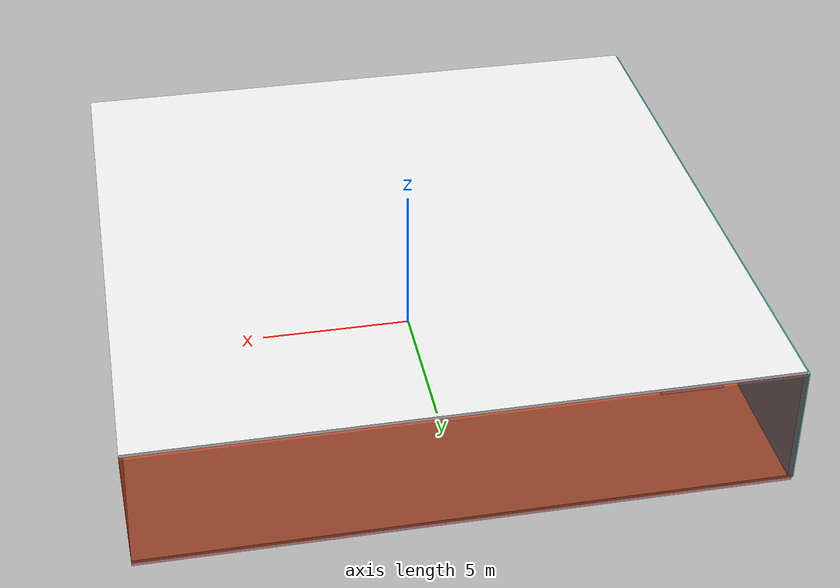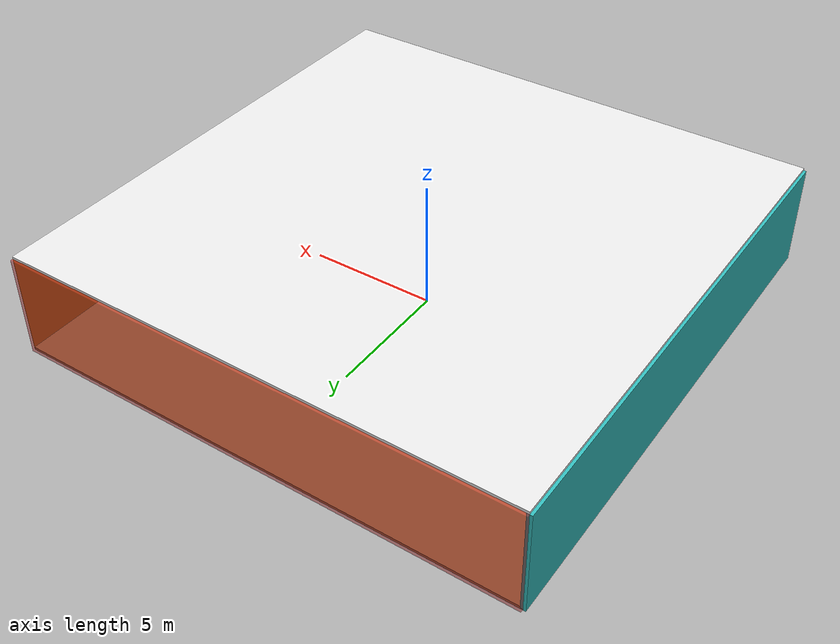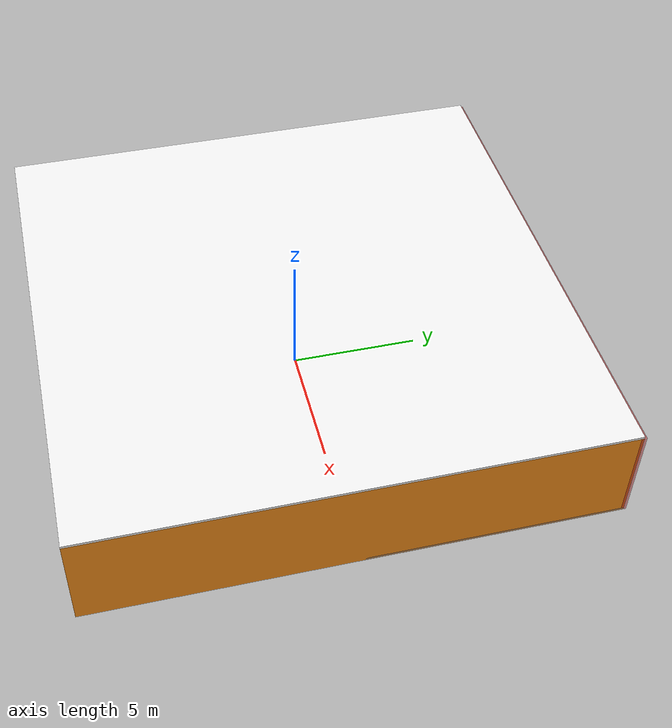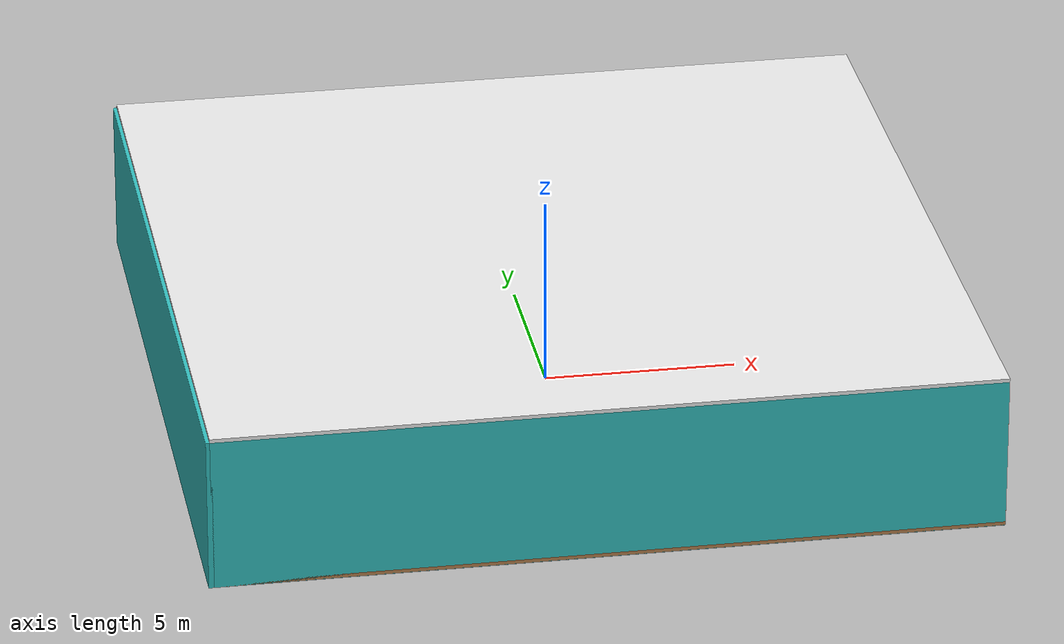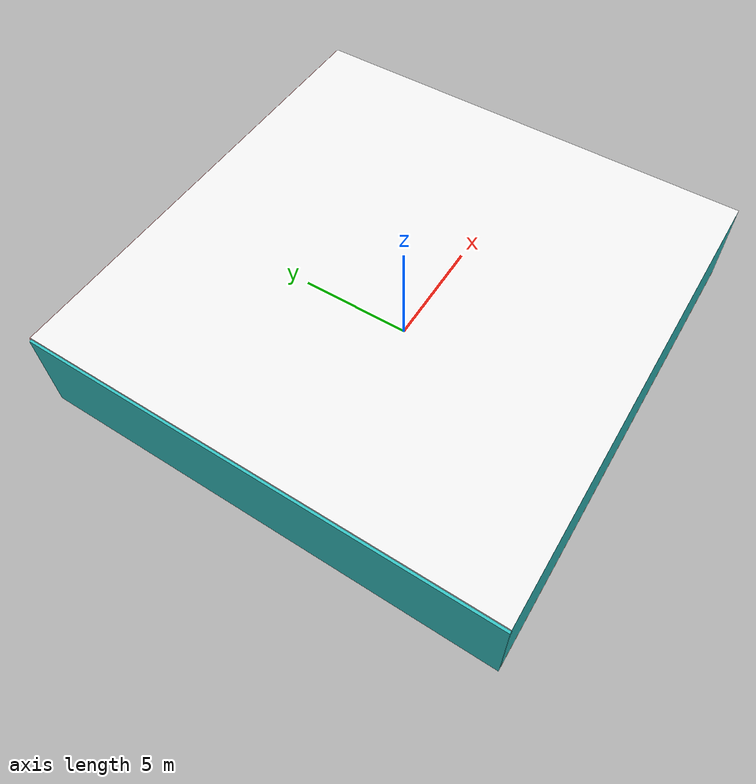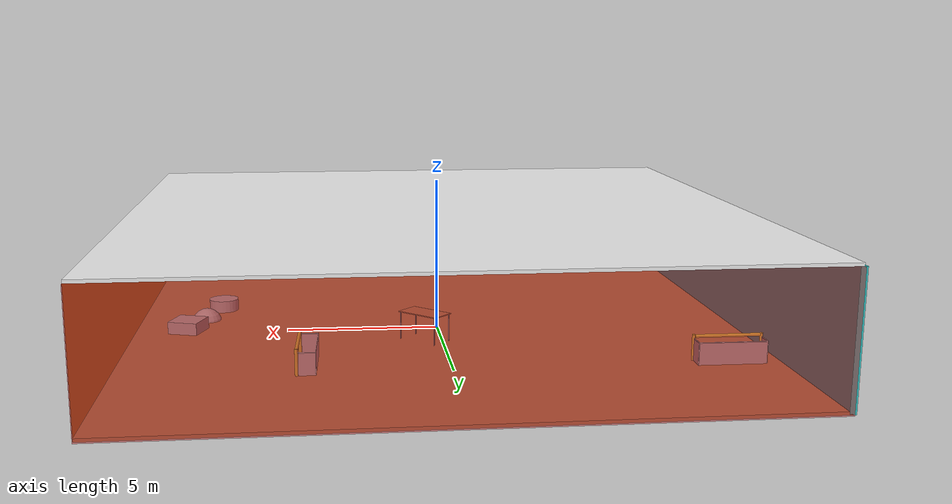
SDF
<sdf version="1.4">
 <world name="default">
  <physics type="ode">
   <max_step_size>0.001</max_step_size>
   <real_time_factor>1</real_time_factor>
   <real_time_update_rate>1000</real_time_update_rate>
   <gravity>0 0 -9.8</gravity>
  </physics>
  <scene><ambient>0.4 0.4 0.4 1</ambient><background>0.7 0.7 0.7 1</background><shadows>1</shadows></scene>
  <model name="Surrounding">
   <static>1</static>
   <link name="Ceiling">
    <collision name="Ceiling_Collision"><geometry><box><size>20 20 0.1</size></box></geometry></collision>
    <visual name="Ceiling_Visual">
     <geometry><box><size>20 20 0.1</size></box></geometry>
     <material>
      <script><uri>file://media/materials/scripts/gazebo.material</uri><name>Gazebo/WhiteGlow</name></script>
     </material>
    </visual>
    <pose>0 0 4.05 0 0 0</pose>
   </link>
   <link name="Wall_South">
    <collision name="Wall_South_Collision">
     <geometry><box><size>20 0 4</size></box></geometry>
     <pose>0 0 2 0 -0 0</pose>
    </collision>
    <visual name="Wall_South_Visual">
     <pose>0 0 2 0 -0 0</pose>
     <geometry><box><size>20 0 4</size></box></geometry>
     <material>
      <script>
       <uri>file://media/materials/scripts/gazebo.material</uri>
       <name>Gazebo/TurquoiseGlowOutline</name>
      </script>
     </material>
    </visual>
    <velocity_decay><linear>0</linear><angular>0</angular></velocity_decay>
    <pose>0 -10 0 0 -0 0</pose>
   </link>
   <link name="Wall_East">
    <collision name="Wall_21_Collision">
     <geometry><box><size>20 0 4</size></box></geometry>
     <pose>0 0 2 0 -0 0</pose>
    </collision>
    <visual name="Wall_21_Visual">
     <pose>0 0 2 0 -0 0</pose>
     <geometry><box><size>20 0 4</size></box></geometry>
     <material>
      <script><uri>file://media/materials/scripts/gazebo.material</uri><name>Gazebo/Orange</name></script>
     </material>
    </visual>
    <velocity_decay><linear>0</linear><angular>0</angular></velocity_decay>
    <pose>10 0 0 0 -0 1.5708</pose>
   </link>
   <link name="Wall_North">
    <collision name="Wall_22_Collision">
     <geometry><box><size>20 0.2 4</size></box></geometry>
     <pose>0 0 2 0 -0 0</pose>
    </collision>
    <visual name="Wall_22_Visual">
     <pose>0 0 2 0 -0 0</pose>
     <geometry><box><size>20 0.2 4</size></box></geometry>
     <material>
      <script><uri>file://media/materials/scripts/gazebo.material</uri><name>Gazebo/RedTransparent</name></script>
     </material>
    </visual>
    <velocity_decay><linear>0</linear><angular>0</angular></velocity_decay>
    <pose>0 10 0 0 -0 0</pose>
   </link>
   <link name="Wall_West">
    <collision name="Wall_23_Collision">
     <geometry><box><size>20 0.2 4</size></box></geometry>
     <pose>0 0 2 0 -0 0</pose>
    </collision>
    <visual name="Wall_23_Visual">
     <pose>0 0 2 0 -0 0</pose>
     <geometry><box><size>20 0.2 4</size></box></geometry>
     <material>
      <script><uri>file://media/materials/scripts/gazebo.material</uri><name>Gazebo/TurquoiseGlow</name></script>
     </material>
    </visual>
    <velocity_decay><linear>0</linear><angular>0</angular></velocity_decay>
    <pose>-10 0 0 0 0 -1.5708</pose>
   </link>
   <link name="Ground_link">
    <collision name="collision">
     <pose>0 0 .05 0 -0 0</pose>
     <geometry><box><size>20 20 0.1</size></box></geometry>
    </collision>
    <visual name="visual">
     <pose>0 0 .05 0 -0 0</pose>
     <geometry><box><size>20 20 0.1</size></box></geometry>
     <material>
      <script><uri>file://media/materials/scripts/gazebo.material</uri><name>Gazebo/WoodPallet</name></script>
     </material>
    </visual>
   </link>
   <static>1</static>
  </model>
  <spherical_coordinates>
   <surface_model>EARTH_WGS84</surface_model>
   <latitude_deg>0</latitude_deg>
   <longitude_deg>0</longitude_deg>
   <elevation>0</elevation>
   <heading_deg>0</heading_deg>
  </spherical_coordinates>
  <light name="lightball_0" type="diffuse">
   <diffuse>0.8 0.8 0.8 1</diffuse>
   <specular>0.2 0.2 0.2 1</specular>
   <attenuation>
    <range>100</range>
    <constant>0.7</constant>
    <linear>0.01</linear>
    <quadratic>0.001</quadratic>
   </attenuation>
   <direction>-0.5 0.1 -0.9</direction>
   <pose>3.97527349369 -6.44028533866 1.15742716032 0 0 0</pose>
  </light>
  <light name="lightball_1" type="diffuse">
   <diffuse>0.8 0.8 0.8 1</diffuse>
   <specular>0.2 0.2 0.2 1</specular>
   <attenuation>
    <range>100</range>
    <constant>0.7</constant>
    <linear>0.01</linear>
    <quadratic>0.001</quadratic>
   </attenuation>
   <direction>-0.5 0.1 -0.9</direction>
   <pose>3.5546072024 -2.9030830401 2.1537009028 0 0 0</pose>
  </light>
  <light name="lightball_2" type="diffuse">
   <diffuse>0.8 0.8 0.8 1</diffuse>
   <specular>0.2 0.2 0.2 1</specular>
   <attenuation>
    <range>100</range>
    <constant>0.7</constant>
    <linear>0.01</linear>
    <quadratic>0.001</quadratic>
   </attenuation>
   <direction>-0.5 0.1 -0.9</direction>
   <pose>-7.2651748634 -3.52611308931 1.9361085779 0 0 0</pose>
  </light>
  <light name="lightball_3" type="diffuse">
   <diffuse>0.8 0.8 0.8 1</diffuse>
   <specular>0.2 0.2 0.2 1</specular>
   <attenuation>
    <range>100</range>
    <constant>0.7</constant>
    <linear>0.01</linear>
    <quadratic>0.001</quadratic>
   </attenuation>
   <direction>-0.5 0.1 -0.9</direction>
   <pose>5.6778023885 -2.87775679113 2.75982009202 0 0 0</pose>
  </light>
  <light name="lightball_4" type="diffuse">
   <diffuse>0.8 0.8 0.8 1</diffuse>
   <specular>0.2 0.2 0.2 1</specular>
   <attenuation>
    <range>100</range>
    <constant>0.7</constant>
    <linear>0.01</linear>
    <quadratic>0.001</quadratic>
   </attenuation>
   <direction>-0.5 0.1 -0.9</direction>
   <pose>0.270938171895 -8.2568081289 2.55935936066 0 0 0</pose>
  </light>
  <light name="lightball_5" type="diffuse">
   <diffuse>0.8 0.8 0.8 1</diffuse>
   <specular>0.2 0.2 0.2 1</specular>
   <attenuation>
    <range>100</range>
    <constant>0.7</constant>
    <linear>0.01</linear>
    <quadratic>0.001</quadratic>
   </attenuation>
   <direction>-0.5 0.1 -0.9</direction>
   <pose>0.249193393969 -5.31004402582 2.65887166321 0 0 0</pose>
  </light>
  <light name="lightball_6" type="diffuse">
   <diffuse>0.8 0.8 0.8 1</diffuse>
   <specular>0.2 0.2 0.2 1</specular>
   <attenuation>
    <range>100</range>
    <constant>0.7</constant>
    <linear>0.01</linear>
    <quadratic>0.001</quadratic>
   </attenuation>
   <direction>-0.5 0.1 -0.9</direction>
   <pose>1.50972805923 -0.134290980298 3.04283494479 0 0 0</pose>
  </light>
  <light name="lightball_7" type="diffuse">
   <diffuse>0.8 0.8 0.8 1</diffuse>
   <specular>0.2 0.2 0.2 1</specular>
   <attenuation>
    <range>100</range>
    <constant>0.7</constant>
    <linear>0.01</linear>
    <quadratic>0.001</quadratic>
   </attenuation>
   <direction>-0.5 0.1 -0.9</direction>
   <pose>3.41037450436 1.28085224936 0.980139281534 0 0 0</pose>
  </light>
  <light name="lightball_8" type="diffuse">
   <diffuse>0.8 0.8 0.8 1</diffuse>
   <specular>0.2 0.2 0.2 1</specular>
   <attenuation>
    <range>100</range>
    <constant>0.7</constant>
    <linear>0.01</linear>
    <quadratic>0.001</quadratic>
   </attenuation>
   <direction>-0.5 0.1 -0.9</direction>
   <pose>-9.21717410578 1.91304221066 3.16963448851 0 0 0</pose>
  </light>
  <light name="lightball_9" type="diffuse">
   <diffuse>0.8 0.8 0.8 1</diffuse>
   <specular>0.2 0.2 0.2 1</specular>
   <attenuation>
    <range>100</range>
    <constant>0.7</constant>
    <linear>0.01</linear>
    <quadratic>0.001</quadratic>
   </attenuation>
   <direction>-0.5 0.1 -0.9</direction>
   <pose>-1.92861218668 6.75663443481 1.11510085923 0 0 0</pose>
  </light>
  <light name="lightball_10" type="diffuse">
   <diffuse>0.8 0.8 0.8 1</diffuse>
   <specular>0.2 0.2 0.2 1</specular>
   <attenuation>
    <range>100</range>
    <constant>0.7</constant>
    <linear>0.01</linear>
    <quadratic>0.001</quadratic>
   </attenuation>
   <direction>-0.5 0.1 -0.9</direction>
   <pose>-1.08405468347 5.72267568884 3.55927019484 0 0 0</pose>
  </light>
  <include>
   <uri>model://robocup_3Dsim_goal</uri>
   <pose>-8.33923609695 4.99308410026 0 0 0 1.5622249961</pose>
  </include>
  <include><uri>model://table</uri><pose>0.588251011462 1.87029430695 0 0 0 2.38425292917</pose></include>
  <include>
   <uri>model://robocup_3Dsim_goal</uri>
   <pose>4.58884043727 4.33825651593 0 0 0 3.10677653352</pose>
  </include>
  <include>
   <uri>model://textured_shapes</uri>
   <pose>7.81597222262 -1.3812966568 0 0 0 2.82237070567</pose>
  </include>
 </world>
</sdf>

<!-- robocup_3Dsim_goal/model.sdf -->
<sdf version="1.5">
  <model name="robocup_3d_goal">
    <static>true</static>
    <link name="left_post">
      <pose>0 1.05 0.45 0 0 0</pose>
      <collision name="collision">
        <geometry>
          <cylinder>
            <radius>0.05</radius>
            <length>0.9</length>
          </cylinder>
        </geometry>
      </collision>
      <visual name="visual">
        <geometry>
          <cylinder>
            <radius>0.05</radius>
            <length>0.9</length>
          </cylinder>
        </geometry>
        <material>
          <script>
            <uri>file://media/materials/scripts/gazebo.material</uri>
            <name>Gazebo/ZincYellow</name>
          </script>
        </material>
      </visual>
    </link>
    <link name="left_support_horiz_lower">
      <pose>0.30 1.05 0.01 0 0 0</pose>
      <collision name="collision">
        <geometry>
          <box>
            <size>0.50 0.02 0.02</size>
          </box>
        </geometry>
      </collision>
      <visual name="visual">
        <geometry>
          <box>
            <size>0.50 0.02 0.02</size>
          </box>
        </geometry>
        <material>
          <script>
            <uri>file://media/materials/scripts/gazebo.material</uri>
            <name>Gazebo/White</name>
          </script>
        </material>
      </visual>
    </link>
    <link name="left_support_horiz_upper">
      <pose>0.30 1.05 0.79 0 0 0</pose>
      <collision name="collision">
        <geometry>
          <box>
            <size>0.50 0.02 0.02</size>
          </box>
        </geometry>
      </collision>
      <visual name="visual">
        <geometry>
          <box>
            <size>0.50 0.02 0.02</size>
          </box>
        </geometry>
        <material>
          <script>
            <uri>file://media/materials/scripts/gazebo.material</uri>
            <name>Gazebo/White</name>
          </script>
        </material>
      </visual>
    </link>
    <link name="left_support_vertical">
      <pose>0.56 1.05 0.4 0 1.5708 0</pose>
      <collision name="collision">
        <geometry>
          <box>
            <size>0.80 0.02 0.02</size>
          </box>
        </geometry>
      </collision>
      <visual name="visual">
        <geometry>
          <box>
            <size>0.80 0.02 0.02</size>
          </box>
        </geometry>
        <material>
          <script>
            <uri>file://media/materials/scripts/gazebo.material</uri>
            <name>Gazebo/White</name>
          </script>
        </material>
      </visual>
    </link>
    <link name="right_support_horiz_lower">
      <pose>0.30 -1.05 0.01 0 0 0</pose>
      <collision name="collision">
        <geometry>
          <box>
            <size>0.50 0.02 0.02</size>
          </box>
        </geometry>
      </collision>
      <visual name="visual">
        <geometry>
          <box>
            <size>0.50 0.02 0.02</size>
          </box>
        </geometry>
        <material>
          <script>
            <uri>file://media/materials/scripts/gazebo.material</uri>
            <name>Gazebo/White</name>
          </script>
        </material>
      </visual>
    </link>
    <link name="right_support_horiz_upper">
      <pose>0.30 -1.05 0.79 0 0 0</pose>
      <collision name="collision">
        <geometry>
          <box>
            <size>0.50 0.02 0.02</size>
          </box>
        </geometry>
      </collision>
      <visual name="visual">
        <geometry>
          <box>
            <size>0.50 0.02 0.02</size>
          </box>
        </geometry>
        <material>
          <script>
            <uri>file://media/materials/scripts/gazebo.material</uri>
            <name>Gazebo/White</name>
          </script>
        </material>
      </visual>
    </link>
    <link name="right_support_vertical">
      <pose>0.56 -1.05 0.4 0 1.5708 0</pose>
      <collision name="collision">
        <geometry>
          <box>
            <size>0.80 0.02 0.02</size>
          </box>
        </geometry>
      </collision>
      <visual name="visual">
        <geometry>
          <box>
            <size>0.80 0.02 0.02</size>
          </box>
        </geometry>
        <material>
          <script>
            <uri>file://media/materials/scripts/gazebo.material</uri>
            <name>Gazebo/White</name>
          </script>
        </material>
      </visual>
    </link>
    <link name="center_support_horiz_lower">
      <pose>0.56 0 0.01 0 1.5708 0</pose>
      <collision name="collision">
        <geometry>
          <box>
            <size>0.02 2.08 0.02</size>
          </box>
        </geometry>
      </collision>
      <visual name="visual">
        <geometry>
          <box>
            <size>0.02 2.08 0.02</size>
          </box>
        </geometry>
        <material>
          <script>
            <uri>file://media/materials/scripts/gazebo.material</uri>
            <name>Gazebo/White</name>
          </script>
        </material>
      </visual>
    </link>
    <link name="center_support_horiz_upper">
      <pose>0.56 0 0.79 0 1.5708 0</pose>
      <collision name="collision">
        <geometry>
          <box>
            <size>0.02 2.08 0.02</size>
          </box>
        </geometry>
      </collision>
      <visual name="visual">
        <geometry>
          <box>
            <size>0.02 2.08 0.02</size>
          </box>
        </geometry>
        <material>
          <script>
            <uri>file://media/materials/scripts/gazebo.material</uri>
            <name>Gazebo/White</name>
          </script>
        </material>
      </visual>
    </link>
    <link name="right_post">
      <pose>0 -1.05 0.45 0 0 0</pose>
      <collision name="collision">
        <geometry>
          <cylinder>
            <radius>0.05</radius>
            <length>0.9</length>
          </cylinder>
        </geometry>
      </collision>
      <visual name="visual">
        <geometry>
          <cylinder>
            <radius>0.05</radius>
            <length>0.9</length>
          </cylinder>
        </geometry>
        <material>
          <script>
            <uri>file://media/materials/scripts/gazebo.material</uri>
            <name>Gazebo/ZincYellow</name>
          </script>
        </material>
      </visual>
    </link>
    <link name="crossbar">
      <pose>0 0 0.85 1.57 1.57 0</pose>
      <collision name="collision">
        <geometry>
          <cylinder>
            <radius>0.05</radius>
            <length>2.0</length>
          </cylinder>
        </geometry>
      </collision>
      <visual name="visual">
        <geometry>
          <cylinder>
            <radius>0.05</radius>
            <length>2.0</length>
          </cylinder>
        </geometry>
        <material>
          <script>
            <uri>file://media/materials/scripts/gazebo.material</uri>
            <name>Gazebo/ZincYellow</name>
          </script>
        </material>
      </visual>
    </link>
    <link name="center_net">
      <pose>0.56 0 0.40 0 0 0</pose>
      <collision name="collision">
        <geometry>
          <box>
            <size>0.01 2.1 0.80</size>
          </box>
        </geometry>
      </collision>
      <visual name="visual">
        <geometry>
          <box>
            <size>0.01 2.1 0.80</size>
          </box>
        </geometry>
        <material>
          <script>
            <uri>model://../model_source/models/robocup09_spl_field/materials/scripts/</uri>
            <uri>model://../model_source/models/robocup09_spl_field/materials/textures/</uri>
            <name>RoboCup/Net</name>
          </script>
        </material>
      </visual>
    </link>
    <link name="left_net">
      <pose>0.30 1.05 0.40 0 0 0</pose>
      <collision name="collision">
        <geometry>
          <box>
            <size>0.50 0.01 0.76</size>
          </box>
        </geometry>
      </collision>
      <visual name="visual">
        <geometry>
          <box>
            <size>0.50 0.01 0.76</size>
          </box>
        </geometry>
        <material>
          <script>
            <uri>model://../model_source/models/robocup09_spl_field/materials/scripts/</uri>
            <uri>model://../model_source/models/robocup09_spl_field/materials/textures/</uri>
            <name>RoboCup/Net</name>
          </script>
        </material>
      </visual>
    </link>
    <link name="right_net">
      <pose>0.30 -1.05 0.40 0 0 0</pose>
      <collision name="collision">
        <geometry>
          <box>
            <size>0.50 0.01 0.76</size>
          </box>
        </geometry>
      </collision>
      <visual name="visual">
        <geometry>
          <box>
            <size>0.50 0.01 0.76</size>
          </box>
        </geometry>
        <material>
          <script>
            <uri>model://../model_source/models/robocup09_spl_field/materials/scripts/</uri>
            <uri>model://../model_source/models/robocup09_spl_field/materials/textures/</uri>
            <name>RoboCup/Net</name>
          </script>
        </material>
      </visual>
    </link>
  </model>
</sdf>

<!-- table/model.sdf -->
<sdf version="1.5">
  <model name="table">
    <static>true</static>
    <link name="link">
      <collision name="surface">
        <pose>0 0 1.0 0 0 0</pose>
        <geometry>
          <box>
            <size>1.5 0.8 0.03</size>
          </box>
        </geometry>
        <surface>
          <friction>
            <ode>
              <mu>0.6</mu>
              <mu2>0.6</mu2>
            </ode>
          </friction>
        </surface>
      </collision>
      <visual name="visual1">
        <pose>0 0 1.0 0 0 0</pose>
        <geometry>
          <box>
            <size>1.5 0.8 0.03</size>
          </box>
        </geometry>
        <material>
          <script>
            <uri>model://media/materials/scripts/gazebo.material</uri>
            <name>Gazebo/Wood</name>
          </script>
        </material>
      </visual>
      <collision name="front_left_leg">
        <pose>0.68 0.38 0.5 0 0 0</pose>
        <geometry>
          <cylinder>
            <radius>0.02</radius>
            <length>1.0</length>
          </cylinder>
        </geometry>
      </collision>
      <visual name="front_left_leg">
        <pose>0.68 0.38 0.5 0 0 0</pose>
        <geometry>
          <cylinder>
            <radius>0.02</radius>
            <length>1.0</length>
          </cylinder>
        </geometry>
        <material>
          <script>
            <uri>model://media/materials/scripts/gazebo.material</uri>
            <name>Gazebo/Grey</name>
          </script>
        </material>
      </visual>
      <collision name="front_right_leg">
        <pose>0.68 -0.38 0.5 0 0 0</pose>
        <geometry>
          <cylinder>
            <radius>0.02</radius>
            <length>1.0</length>
          </cylinder>
        </geometry>
      </collision>
      <visual name="front_right_leg">
        <pose>0.68 -0.38 0.5 0 0 0</pose>
        <geometry>
          <cylinder>
            <radius>0.02</radius>
            <length>1.0</length>
          </cylinder>
        </geometry>
        <material>
          <script>
            <uri>model://media/materials/scripts/gazebo.material</uri>
            <name>Gazebo/Grey</name>
          </script>
        </material>
      </visual>
      <collision name="back_right_leg">
        <pose>-0.68 -0.38 0.5 0 0 0</pose>
        <geometry>
          <cylinder>
            <radius>0.02</radius>
            <length>1.0</length>
          </cylinder>
        </geometry>
      </collision>
      <visual name="back_right_leg">
        <pose>-0.68 -0.38 0.5 0 0 0</pose>
        <geometry>
          <cylinder>
            <radius>0.02</radius>
            <length>1.0</length>
          </cylinder>
        </geometry>
        <material>
          <script>
            <uri>model://media/materials/scripts/gazebo.material</uri>
            <name>Gazebo/Grey</name>
          </script>
        </material>
      </visual>
      <collision name="back_left_leg">
        <pose>-0.68 0.38 0.5 0 0 0</pose>
        <geometry>
          <cylinder>
            <radius>0.02</radius>
            <length>1.0</length>
          </cylinder>
        </geometry>
      </collision>
      <visual name="back_left_leg">
        <pose>-0.68 0.38 0.5 0 0 0</pose>
        <geometry>
          <cylinder>
            <radius>0.02</radius>
            <length>1.0</length>
          </cylinder>
        </geometry>
        <material>
          <script>
            <uri>model://media/materials/scripts/gazebo.material</uri>
            <name>Gazebo/Grey</name>
          </script>
        </material>
      </visual>
    </link>
  </model>
</sdf>

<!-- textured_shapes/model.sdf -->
<sdf version="1.6">
  <model name="textured_shapes">
    <pose>0 0 0.5 0 0 0</pose>
    <link name="box">
      <pose>0 -1.5 0 0 0 0</pose>
      <collision name="collision">
        <geometry>
          <box>
            <size>1 1 1</size>
          </box>
        </geometry>
      </collision>
      <visual name="visual">
        <geometry>
          <box>
            <size>1 1 1</size>
          </box>
        </geometry>
        <material>
          <script>
            <uri>model://../model_source/models/textured_shapes/materials/scripts</uri>
            <uri>model://../model_source/models/textured_shapes/materials/textures</uri>
            <name>TexturedShape/Squares</name>
          </script>
        </material>
      </visual>
    </link>
    <link name="sphere">
      <collision name="collision">
        <geometry>
          <sphere>
            <radius>0.5</radius>
          </sphere>
        </geometry>
      </collision>
      <visual name="visual">
        <geometry>
          <sphere>
            <radius>0.5</radius>
          </sphere>
        </geometry>
        <material>
          <script>
            <uri>model://../model_source/models/textured_shapes/materials/scripts</uri>
            <uri>model://../model_source/models/textured_shapes/materials/textures</uri>
            <name>TexturedShape/Squares</name>
          </script>
        </material>
      </visual>
    </link>
    <link name="cylinder">
      <pose>0 1.5 0 0 0 0</pose>
      <collision name="collision">
        <geometry>
          <cylinder>
            <radius>0.5</radius>
            <length>1</length>
          </cylinder>
        </geometry>
      </collision>
      <visual name="visual">
        <geometry>
          <cylinder>
            <radius>0.5</radius>
            <length>1</length>
          </cylinder>
        </geometry>
        <material>
          <script>
            <uri>model://../model_source/models/textured_shapes/materials/scripts</uri>
            <uri>model://../model_source/models/textured_shapes/materials/textures</uri>
            <name>TexturedShape/Squares</name>
          </script>
        </material>
      </visual>
    </link>
  </model>
</sdf>
